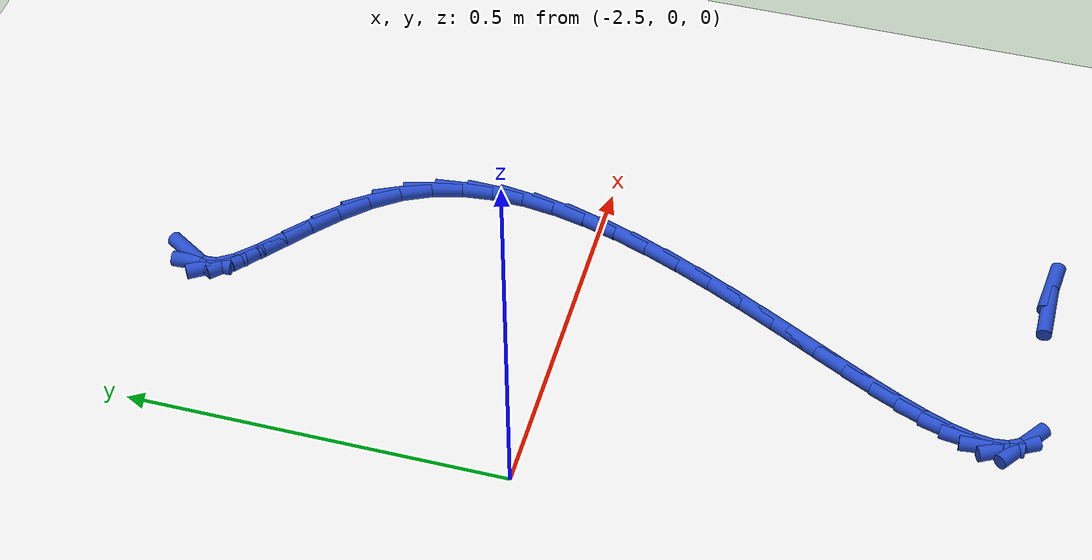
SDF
<sdf version="1.6">
 <world name="default">
  <model name="ground_plane">
   <static>1</static>
   <link name="link">
    <collision name="collision">
     <geometry><plane><normal>0 0 1</normal><size>100 100</size></plane></geometry>
     <surface><friction><ode><mu>100</mu><mu2>50</mu2></ode></friction></surface>
    </collision>
    <visual name="visual">
     <cast_shadows>0</cast_shadows>
     <geometry><plane><normal>0 0 1</normal><size>100 100</size></plane></geometry>
     <material>
      <script><uri>file://media/materials/scripts/gazebo.material</uri><name>Gazebo/WhiteGlow</name></script>
     </material>
    </visual>
   </link>
  </model>
  <model name="line">
   <link name="link_83">
    <pose>-2.257500331477951 0.5052778865455865 0.01 0 1.57 1.0197156612388651</pose>
    <collision name="collision">
     <geometry><cylinder><radius>0.01</radius><length>0.08</length></cylinder></geometry>
    </collision>
    <visual name="visual">
     <material>
      <script><name>Gazebo/Blue</name><uri>file://media/materials/scripts/gazebo.material</uri></script>
     </material>
     <geometry><cylinder><radius>0.01</radius><length>0.08</length></cylinder></geometry>
    </visual>
   </link>
   <link name="link_84">
    <pose>-2.268528901991648 0.4873333785803952 0.01 0 1.57 -1.5179183878493339</pose>
    <collision name="collision">
     <geometry><cylinder><radius>0.01</radius><length>0.08</length></cylinder></geometry>
    </collision>
    <visual name="visual">
     <material>
      <script><name>Gazebo/Blue</name><uri>file://media/materials/scripts/gazebo.material</uri></script>
     </material>
     <geometry><cylinder><radius>0.01</radius><length>0.08</length></cylinder></geometry>
    </visual>
   </link>
   <link name="link_85">
    <pose>-2.2675050074825958 0.4679880702013109 0.01 0 1.57 -1.0044134954557866</pose>
    <collision name="collision">
     <geometry><cylinder><radius>0.01</radius><length>0.08</length></cylinder></geometry>
    </collision>
    <visual name="visual">
     <material>
      <script><name>Gazebo/Blue</name><uri>file://media/materials/scripts/gazebo.material</uri></script>
     </material>
     <geometry><cylinder><radius>0.01</radius><length>0.08</length></cylinder></geometry>
    </visual>
   </link>
   <link name="link_86">
    <pose>-2.2540867822565103 0.44688615359524486 0.01 0 1.57 -0.784135818813499</pose>
    <collision name="collision">
     <geometry><cylinder><radius>0.01</radius><length>0.08</length></cylinder></geometry>
    </collision>
    <visual name="visual">
     <material>
      <script><name>Gazebo/Blue</name><uri>file://media/materials/scripts/gazebo.material</uri></script>
     </material>
     <geometry><cylinder><radius>0.01</radius><length>0.08</length></cylinder></geometry>
    </visual>
   </link>
   <link name="link_87">
    <pose>-2.230977059328142 0.4238347020064693 0.01 0 1.57 -0.7027466421415027</pose>
    <collision name="collision">
     <geometry><cylinder><radius>0.01</radius><length>0.08</length></cylinder></geometry>
    </collision>
    <visual name="visual">
     <material>
      <script><name>Gazebo/Blue</name><uri>file://media/materials/scripts/gazebo.material</uri></script>
     </material>
     <geometry><cylinder><radius>0.01</radius><length>0.08</length></cylinder></geometry>
    </visual>
   </link>
   <link name="link_88">
    <pose>-2.2012558072173727 0.3986609641500382 0.01 0 1.57 -0.6904296637657507</pose>
    <collision name="collision">
     <geometry><cylinder><radius>0.01</radius><length>0.08</length></cylinder></geometry>
    </collision>
    <visual name="visual">
     <material>
      <script><name>Gazebo/Blue</name><uri>file://media/materials/scripts/gazebo.material</uri></script>
     </material>
     <geometry><cylinder><radius>0.01</radius><length>0.08</length></cylinder></geometry>
    </visual>
   </link>
   <link name="link_89">
    <pose>-2.1680029944440857 0.37119218874100574 0.01 0 1.57 -0.7262625527580928</pose>
    <collision name="collision">
     <geometry><cylinder><radius>0.01</radius><length>0.08</length></cylinder></geometry>
    </collision>
    <visual name="visual">
     <material>
      <script><name>Gazebo/Blue</name><uri>file://media/materials/scripts/gazebo.material</uri></script>
     </material>
     <geometry><cylinder><radius>0.01</radius><length>0.08</length></cylinder></geometry>
    </visual>
   </link>
   <link name="link_90">
    <pose>-2.1342985895281634 0.34125562449442615 0.01 0 1.57 -0.808975913572905</pose>
    <collision name="collision">
     <geometry><cylinder><radius>0.01</radius><length>0.08</length></cylinder></geometry>
    </collision>
    <visual name="visual">
     <material>
      <script><name>Gazebo/Blue</name><uri>file://media/materials/scripts/gazebo.material</uri></script>
     </material>
     <geometry><cylinder><radius>0.01</radius><length>0.08</length></cylinder></geometry>
    </visual>
   </link>
   <link name="link_91">
    <pose>-2.103222560989491 0.3086785201253539 0.01 0 1.57 -0.9485454876542986</pose>
    <collision name="collision">
     <geometry><cylinder><radius>0.01</radius><length>0.08</length></cylinder></geometry>
    </collision>
    <visual name="visual">
     <material>
      <script><name>Gazebo/Blue</name><uri>file://media/materials/scripts/gazebo.material</uri></script>
     </material>
     <geometry><cylinder><radius>0.01</radius><length>0.08</length></cylinder></geometry>
    </visual>
   </link>
   <link name="link_92">
    <pose>-2.0778382673258 0.27329046572487203 0.01 0 1.57 -1.1318795407128897</pose>
    <collision name="collision">
     <geometry><cylinder><radius>0.01</radius><length>0.08</length></cylinder></geometry>
    </collision>
    <visual name="visual">
     <material>
      <script><name>Gazebo/Blue</name><uri>file://media/materials/scripts/gazebo.material</uri></script>
     </material>
     <geometry><cylinder><radius>0.01</radius><length>0.08</length></cylinder></geometry>
    </visual>
   </link>
   <link name="link_93">
    <pose>-2.059911321311543 0.23510398375470945 0.01 0 1.57 -1.3086353242150117</pose>
    <collision name="collision">
     <geometry><cylinder><radius>0.01</radius><length>0.08</length></cylinder></geometry>
    </collision>
    <visual name="visual">
     <material>
      <script><name>Gazebo/Blue</name><uri>file://media/materials/scripts/gazebo.material</uri></script>
     </material>
     <geometry><cylinder><radius>0.01</radius><length>0.08</length></cylinder></geometry>
    </visual>
   </link>
   <link name="link_94">
    <pose>-2.049000399561115 0.19444269002591702 0.01 0 1.57 -1.464821255392545</pose>
    <collision name="collision">
     <geometry><cylinder><radius>0.01</radius><length>0.08</length></cylinder></geometry>
    </collision>
    <visual name="visual">
     <material>
      <script><name>Gazebo/Blue</name><uri>file://media/materials/scripts/gazebo.material</uri></script>
     </material>
     <geometry><cylinder><radius>0.01</radius><length>0.08</length></cylinder></geometry>
    </visual>
   </link>
   <link name="link_95">
    <pose>-2.044449500476867 0.15166046174324552 0.01 0 1.57 1.5449179194475227</pose>
    <collision name="collision">
     <geometry><cylinder><radius>0.01</radius><length>0.08</length></cylinder></geometry>
    </collision>
    <visual name="visual">
     <material>
      <script><name>Gazebo/Blue</name><uri>file://media/materials/scripts/gazebo.material</uri></script>
     </material>
     <geometry><cylinder><radius>0.01</radius><length>0.08</length></cylinder></geometry>
    </visual>
   </link>
   <link name="link_96">
    <pose>-2.0456026224611508 0.10711117611144605 0.01 0 1.57 1.4366886128468037</pose>
    <collision name="collision">
     <geometry><cylinder><radius>0.01</radius><length>0.08</length></cylinder></geometry>
    </collision>
    <visual name="visual">
     <material>
      <script><name>Gazebo/Blue</name><uri>file://media/materials/scripts/gazebo.material</uri></script>
     </material>
     <geometry><cylinder><radius>0.01</radius><length>0.08</length></cylinder></geometry>
    </visual>
   </link>
   <link name="link_97">
    <pose>-2.0518037639163196 0.061148710335268294 0.01 0 1.57 1.3492134641371918</pose>
    <collision name="collision">
     <geometry><cylinder><radius>0.01</radius><length>0.08</length></cylinder></geometry>
    </collision>
    <visual name="visual">
     <material>
      <script><name>Gazebo/Blue</name><uri>file://media/materials/scripts/gazebo.material</uri></script>
     </material>
     <geometry><cylinder><radius>0.01</radius><length>0.08</length></cylinder></geometry>
    </visual>
   </link>
   <link name="link_98">
    <pose>-2.0623969232447252 0.01412694161946357 0.01 0 1.57 1.2791277674336552</pose>
    <collision name="collision">
     <geometry><cylinder><radius>0.01</radius><length>0.08</length></cylinder></geometry>
    </collision>
    <visual name="visual">
     <material>
      <script><name>Gazebo/Blue</name><uri>file://media/materials/scripts/gazebo.material</uri></script>
     </material>
     <geometry><cylinder><radius>0.01</radius><length>0.08</length></cylinder></geometry>
    </visual>
   </link>
   <link name="link_99">
    <pose>-2.076726098848721 -0.033600252831217474 0.01 0 1.57 1.2233851800706959</pose>
    <collision name="collision">
     <geometry><cylinder><radius>0.01</radius><length>0.08</length></cylinder></geometry>
    </collision>
    <visual name="visual">
     <material>
      <script><name>Gazebo/Blue</name><uri>file://media/materials/scripts/gazebo.material</uri></script>
     </material>
     <geometry><cylinder><radius>0.01</radius><length>0.08</length></cylinder></geometry>
    </visual>
   </link>
   <link name="link_100">
    <pose>-2.094135289130658 -0.08167899581202419 0.01 0 1.57 1.1795308412975263</pose>
    <collision name="collision">
     <geometry><cylinder><radius>0.01</radius><length>0.08</length></cylinder></geometry>
    </collision>
    <visual name="visual">
     <material>
      <script><name>Gazebo/Blue</name><uri>file://media/materials/scripts/gazebo.material</uri></script>
     </material>
     <geometry><cylinder><radius>0.01</radius><length>0.08</length></cylinder></geometry>
    </visual>
   </link>
   <link name="link_101">
    <pose>-2.1139684924928903 -0.1297554101182058 0.01 0 1.57 1.1457293231172085</pose>
    <collision name="collision">
     <geometry><cylinder><radius>0.01</radius><length>0.08</length></cylinder></geometry>
    </collision>
    <visual name="visual">
     <material>
      <script><name>Gazebo/Blue</name><uri>file://media/materials/scripts/gazebo.material</uri></script>
     </material>
     <geometry><cylinder><radius>0.01</radius><length>0.08</length></cylinder></geometry>
    </visual>
   </link>
   <link name="link_102">
    <pose>-2.1355697073377677 -0.1774756185450116 0.01 0 1.57 1.120714481412225</pose>
    <collision name="collision">
     <geometry><cylinder><radius>0.01</radius><length>0.08</length></cylinder></geometry>
    </collision>
    <visual name="visual">
     <material>
      <script><name>Gazebo/Blue</name><uri>file://media/materials/scripts/gazebo.material</uri></script>
     </material>
     <geometry><cylinder><radius>0.01</radius><length>0.08</length></cylinder></geometry>
    </visual>
   </link>
   <link name="link_103">
    <pose>-2.1582829320676447 -0.22448574388769096 0.01 0 1.57 1.1037392433362836</pose>
    <collision name="collision">
     <geometry><cylinder><radius>0.01</radius><length>0.08</length></cylinder></geometry>
    </collision>
    <visual name="visual">
     <material>
      <script><name>Gazebo/Blue</name><uri>file://media/materials/scripts/gazebo.material</uri></script>
     </material>
     <geometry><cylinder><radius>0.01</radius><length>0.08</length></cylinder></geometry>
    </visual>
   </link>
   <link name="link_104">
    <pose>-2.1814521650848726 -0.2704319089414932 0.01 0 1.57 1.0945616513576906</pose>
    <collision name="collision">
     <geometry><cylinder><radius>0.01</radius><length>0.08</length></cylinder></geometry>
    </collision>
    <visual name="visual">
     <material>
      <script><name>Gazebo/Blue</name><uri>file://media/materials/scripts/gazebo.material</uri></script>
     </material>
     <geometry><cylinder><radius>0.01</radius><length>0.08</length></cylinder></geometry>
    </visual>
   </link>
   <link name="link_105">
    <pose>-2.2044214047918036 -0.3149602365016674 0.01 0 1.57 1.0934923621363735</pose>
    <collision name="collision">
     <geometry><cylinder><radius>0.01</radius><length>0.08</length></cylinder></geometry>
    </collision>
    <visual name="visual">
     <material>
      <script><name>Gazebo/Blue</name><uri>file://media/materials/scripts/gazebo.material</uri></script>
     </material>
     <geometry><cylinder><radius>0.01</radius><length>0.08</length></cylinder></geometry>
    </visual>
   </link>
   <link name="link_106">
    <pose>-2.226534649590791 -0.35771684936346315 0.01 0 1.57 1.1015385550808965</pose>
    <collision name="collision">
     <geometry><cylinder><radius>0.01</radius><length>0.08</length></cylinder></geometry>
    </collision>
    <visual name="visual">
     <material>
      <script><name>Gazebo/Blue</name><uri>file://media/materials/scripts/gazebo.material</uri></script>
     </material>
     <geometry><cylinder><radius>0.01</radius><length>0.08</length></cylinder></geometry>
    </visual>
   </link>
   <link name="link_107">
    <pose>-2.2471358978841858 -0.3983478703221296 0.01 0 1.57 1.1207123880403387</pose>
    <collision name="collision">
     <geometry><cylinder><radius>0.01</radius><length>0.08</length></cylinder></geometry>
    </collision>
    <visual name="visual">
     <material>
      <script><name>Gazebo/Blue</name><uri>file://media/materials/scripts/gazebo.material</uri></script>
     </material>
     <geometry><cylinder><radius>0.01</radius><length>0.08</length></cylinder></geometry>
    </visual>
   </link>
   <link name="link_108">
    <pose>-2.2655691480743414 -0.4364994221729159 0.01 0 1.57 1.1546481603664986</pose>
    <collision name="collision">
     <geometry><cylinder><radius>0.01</radius><length>0.08</length></cylinder></geometry>
    </collision>
    <visual name="visual">
     <material>
      <script><name>Gazebo/Blue</name><uri>file://media/materials/scripts/gazebo.material</uri></script>
     </material>
     <geometry><cylinder><radius>0.01</radius><length>0.08</length></cylinder></geometry>
    </visual>
   </link>
   <link name="link_109">
    <pose>-2.2811783985636103 -0.4718176277110716 0.01 0 1.57 1.2098410325878897</pose>
    <collision name="collision">
     <geometry><cylinder><radius>0.01</radius><length>0.08</length></cylinder></geometry>
    </collision>
    <visual name="visual">
     <material>
      <script><name>Gazebo/Blue</name><uri>file://media/materials/scripts/gazebo.material</uri></script>
     </material>
     <geometry><cylinder><radius>0.01</radius><length>0.08</length></cylinder></geometry>
    </visual>
   </link>
   <link name="link_110">
    <pose>-2.293307647754344 -0.5039486097318459 0.01 0 1.57 1.298174300503298</pose>
    <collision name="collision">
     <geometry><cylinder><radius>0.01</radius><length>0.08</length></cylinder></geometry>
    </collision>
    <visual name="visual">
     <material>
      <script><name>Gazebo/Blue</name><uri>file://media/materials/scripts/gazebo.material</uri></script>
     </material>
     <geometry><cylinder><radius>0.01</radius><length>0.08</length></cylinder></geometry>
    </visual>
   </link>
   <link name="link_111">
    <pose>-2.3013008940488957 -0.532538491030488 0.01 0 1.57 1.4418835390558067</pose>
    <collision name="collision">
     <geometry><cylinder><radius>0.01</radius><length>0.08</length></cylinder></geometry>
    </collision>
    <visual name="visual">
     <material>
      <script><name>Gazebo/Blue</name><uri>file://media/materials/scripts/gazebo.material</uri></script>
     </material>
     <geometry><cylinder><radius>0.01</radius><length>0.08</length></cylinder></geometry>
    </visual>
   </link>
   <link name="link_112">
    <pose>-2.3045021358496163 -0.5572333944022474 0.01 0 1.57 -1.4613479967668783</pose>
    <collision name="collision">
     <geometry><cylinder><radius>0.01</radius><length>0.08</length></cylinder></geometry>
    </collision>
    <visual name="visual">
     <material>
      <script><name>Gazebo/Blue</name><uri>file://media/materials/scripts/gazebo.material</uri></script>
     </material>
     <geometry><cylinder><radius>0.01</radius><length>0.08</length></cylinder></geometry>
    </visual>
   </link>
   <link name="link_113">
    <pose>-2.30225537155886 -0.5776794426423733 0.01 0 1.57 -1.0857163429956413</pose>
    <collision name="collision">
     <geometry><cylinder><radius>0.01</radius><length>0.08</length></cylinder></geometry>
    </collision>
    <visual name="visual">
     <material>
      <script><name>Gazebo/Blue</name><uri>file://media/materials/scripts/gazebo.material</uri></script>
     </material>
     <geometry><cylinder><radius>0.01</radius><length>0.08</length></cylinder></geometry>
    </visual>
   </link>
   <link name="link_114">
    <pose>-2.293904599578977 -0.5935227585461147 0.01 0 1.57 -0.6243256276819049</pose>
    <collision name="collision">
     <geometry><cylinder><radius>0.01</radius><length>0.08</length></cylinder></geometry>
    </collision>
    <visual name="visual">
     <material>
      <script><name>Gazebo/Blue</name><uri>file://media/materials/scripts/gazebo.material</uri></script>
     </material>
     <geometry><cylinder><radius>0.01</radius><length>0.08</length></cylinder></geometry>
    </visual>
   </link>
   <link name="link_121">
    <pose>-2.0667690442380424 -0.595439202268876 0.01 0 1.57 0.008213929411295494</pose>
    <collision name="collision">
     <geometry><cylinder><radius>0.01</radius><length>0.08</length></cylinder></geometry>
    </collision>
    <visual name="visual">
     <material>
      <script><name>Gazebo/Blue</name><uri>file://media/materials/scripts/gazebo.material</uri></script>
     </material>
     <geometry><cylinder><radius>0.01</radius><length>0.08</length></cylinder></geometry>
    </visual>
   </link>
   <link name="link_122">
    <pose>-2.0245343273049827 -0.595092281483156 0.01 0 1.57 -0.10540164633740166</pose>
    <collision name="collision">
     <geometry><cylinder><radius>0.01</radius><length>0.08</length></cylinder></geometry>
    </collision>
    <visual name="visual">
     <material>
      <script><name>Gazebo/Blue</name><uri>file://media/materials/scripts/gazebo.material</uri></script>
     </material>
     <geometry><cylinder><radius>0.01</radius><length>0.08</length></cylinder></geometry>
    </visual>
   </link>
  </model>
 </world>
</sdf>
